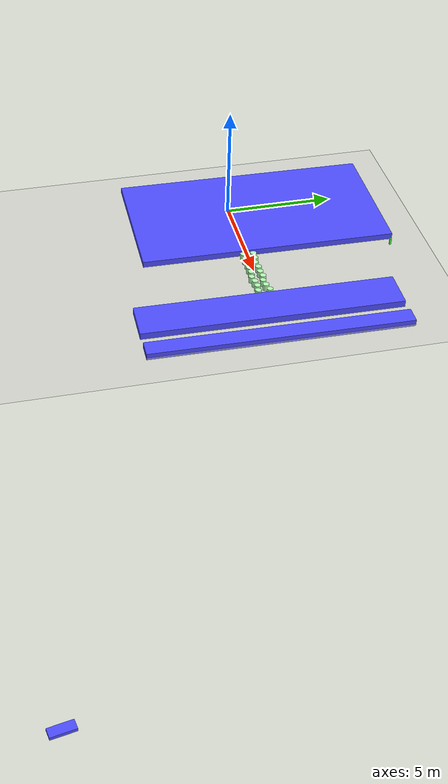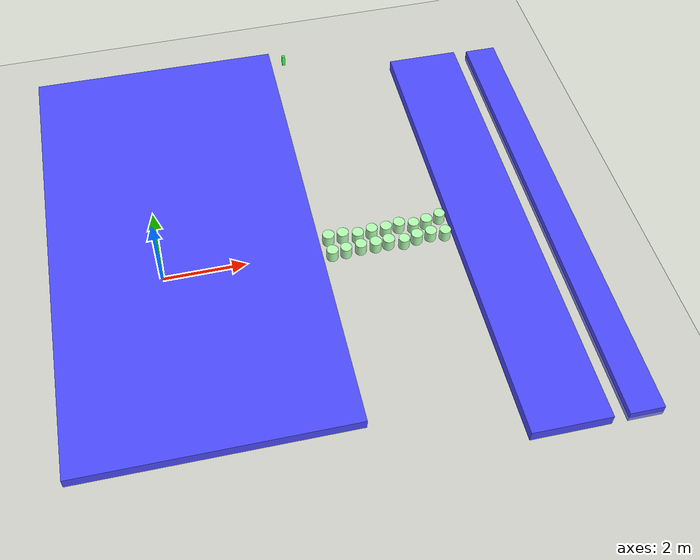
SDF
<sdf version="1.7">
 <world name="default">
  <light name="sun" type="directional">
   <pose>0 0 10 0 -0 0</pose>
   <diffuse>0.8 0.8 0.8 1</diffuse>
   <specular>0.2 0.2 0.2 1</specular>
   <attenuation>
    <range>1000</range>
    <constant>0.9</constant>
    <linear>0.01</linear>
    <quadratic>0.001</quadratic>
   </attenuation>
   <direction>-0.5 0.1 -0.9</direction>
   <spot><inner_angle>0</inner_angle><outer_angle>0</outer_angle><falloff>0</falloff></spot>
  </light>
  <model name="ground_plane">
   <static>1</static>
   <link name="link">
    <collision name="collision">
     <geometry><plane><normal>0 0 1</normal><size>100 100</size></plane></geometry>
     <surface><friction><ode><mu>100</mu><mu2>50</mu2></ode></friction></surface>
    </collision>
    <visual name="visual">
     <cast_shadows>0</cast_shadows>
     <geometry><plane><normal>0 0 1</normal><size>100 100</size></plane></geometry>
     <material>
      <script><uri>file://media/materials/scripts/gazebo.material</uri><name>Gazebo/Grey</name></script>
     </material>
    </visual>
   </link>
  </model>
  <gravity>0 0 -9.8</gravity>
  <magnetic_field>6e-06 2.3e-05 -4.2e-05</magnetic_field>
  <atmosphere type="adiabatic"/>
  <physics type="ode">
   <max_step_size>0.001</max_step_size>
   <real_time_factor>1</real_time_factor>
   <real_time_update_rate>1000</real_time_update_rate>
  </physics>
  <scene><ambient>0.4 0.4 0.4 1</ambient><background>0.7 0.7 0.7 1</background><shadows>1</shadows></scene>
  <spherical_coordinates>
   <surface_model>EARTH_WGS84</surface_model>
   <latitude_deg>0</latitude_deg>
   <longitude_deg>0</longitude_deg>
   <elevation>0</elevation>
   <heading_deg>0</heading_deg>
  </spherical_coordinates>
  <model name="ban_200_80_30_clone_clone">
   <link name="link">
    <inertial>
     <mass>1</mass>
     <inertia>
      <ixx>0.166667</ixx>
      <ixy>0</ixy>
      <ixz>0</ixz>
      <iyy>0.166667</iyy>
      <iyz>0</iyz>
      <izz>0.166667</izz>
     </inertia>
    </inertial>
    <visual name="visual">
     <geometry><box><size>2 0.8 0.3</size></box></geometry>
     <material>
      <script><name>Gazebo/Grey</name><uri>file://media/materials/scripts/gazebo.material</uri></script>
      <shader type="pixel"><normal_map>__default__</normal_map></shader>
      <ambient>0.3 0.3 1 1</ambient>
      <diffuse>0.7 0.7 0.7 1</diffuse>
      <specular>0.01 0.01 0.01 1</specular>
      <emissive>0 0 0 1</emissive>
     </material>
    </visual>
    <collision name="collision">
     <geometry><box><size>2 0.8 0.3</size></box></geometry>
     <surface>
      <friction>
       <ode><mu>1</mu><mu2>1</mu2><fdir1>0 0 0</fdir1><slip1>0</slip1><slip2>0</slip2></ode>
       <torsional>
        <coefficient>1</coefficient>
        <patch_radius>0</patch_radius>
        <surface_radius>0</surface_radius>
        <use_patch_radius>1</use_patch_radius>
        <ode><slip>0</slip></ode>
       </torsional>
      </friction>
      <bounce><restitution_coefficient>0</restitution_coefficient><threshold>1e+06</threshold></bounce>
      <contact>
       <collide_without_contact>0</collide_without_contact>
       <collide_without_contact_bitmask>1</collide_without_contact_bitmask>
       <collide_bitmask>1</collide_bitmask>
       <ode>
        <soft_cfm>0</soft_cfm>
        <soft_erp>0.2</soft_erp>
        <kp>1e+13</kp>
        <kd>1</kd>
        <max_vel>0.01</max_vel>
        <min_depth>0</min_depth>
       </ode>
       <bullet>
        <split_impulse>1</split_impulse>
        <split_impulse_penetration_threshold>-0.01</split_impulse_penetration_threshold>
        <soft_cfm>0</soft_cfm>
        <soft_erp>0.2</soft_erp>
        <kp>1e+13</kp>
        <kd>1</kd>
       </bullet>
      </contact>
     </surface>
    </collision>
   </link>
   <static>1</static>
   <pose>3.32802 -11.2985 -36.3188 0 0 -1.39548</pose>
  </model>
  <model name="ban_400_80_30_clone">
   <link name="link">
    <inertial>
     <mass>1</mass>
     <inertia>
      <ixx>0.166667</ixx>
      <ixy>0</ixy>
      <ixz>0</ixz>
      <iyy>0.166667</iyy>
      <iyz>0</iyz>
      <izz>0.166667</izz>
     </inertia>
    </inertial>
    <visual name="visual">
     <geometry><box><size>11.7457 0.8 0.3</size></box></geometry>
     <material>
      <script><name>Gazebo/Grey</name><uri>file://media/materials/scripts/gazebo.material</uri></script>
      <shader type="pixel"><normal_map>__default__</normal_map></shader>
      <ambient>0.3 0.3 1 1</ambient>
      <diffuse>0.7 0.7 0.7 1</diffuse>
      <specular>0.01 0.01 0.01 1</specular>
      <emissive>0 0 0 1</emissive>
     </material>
    </visual>
    <collision name="collision">
     <geometry><box><size>11.7457 0.8 0.3</size></box></geometry>
     <surface>
      <friction>
       <ode><mu>1</mu><mu2>1</mu2><fdir1>0 0 0</fdir1><slip1>0</slip1><slip2>0</slip2></ode>
       <torsional>
        <coefficient>1</coefficient>
        <patch_radius>0</patch_radius>
        <surface_radius>0</surface_radius>
        <use_patch_radius>1</use_patch_radius>
        <ode><slip>0</slip></ode>
       </torsional>
      </friction>
      <bounce><restitution_coefficient>0</restitution_coefficient><threshold>1e+06</threshold></bounce>
      <contact>
       <collide_without_contact>0</collide_without_contact>
       <collide_without_contact_bitmask>1</collide_without_contact_bitmask>
       <collide_bitmask>1</collide_bitmask>
       <ode>
        <soft_cfm>0</soft_cfm>
        <soft_erp>0.2</soft_erp>
        <kp>1e+13</kp>
        <kd>1</kd>
        <max_vel>0.01</max_vel>
        <min_depth>0</min_depth>
       </ode>
       <bullet>
        <split_impulse>1</split_impulse>
        <split_impulse_penetration_threshold>-0.01</split_impulse_penetration_threshold>
        <soft_cfm>0</soft_cfm>
        <soft_erp>0.2</soft_erp>
        <kp>1e+13</kp>
        <kd>1</kd>
       </bullet>
      </contact>
     </surface>
    </collision>
   </link>
   <static>1</static>
   <pose>9.68721 0.016567 0 0 -0 1.55763</pose>
  </model>
  <model name="mhz_8_30_clone">
   <link name="link">
    <inertial>
     <mass>1</mass>
     <inertia>
      <ixx>0.166667</ixx>
      <ixy>0</ixy>
      <ixz>0</ixz>
      <iyy>0.166667</iyy>
      <iyz>0</iyz>
      <izz>0.166667</izz>
     </inertia>
    </inertial>
    <visual name="visual">
     <geometry><box><size>0.08 0.08 0.3</size></box></geometry>
     <material>
      <script><name>Gazebo/Grey</name><uri>file://media/materials/scripts/gazebo.material</uri></script>
      <shader type="pixel"><normal_map>__default__</normal_map></shader>
      <ambient>0.3 1 0.3 1</ambient>
      <diffuse>0.7 0.7 0.7 1</diffuse>
      <specular>0.01 0.01 0.01 1</specular>
      <emissive>0 0 0 1</emissive>
     </material>
    </visual>
    <collision name="collision">
     <geometry><box><size>0.08 0.08 0.3</size></box></geometry>
     <surface>
      <friction>
       <ode><mu>1</mu><mu2>1</mu2><fdir1>0 0 0</fdir1><slip1>0</slip1><slip2>0</slip2></ode>
       <torsional>
        <coefficient>1</coefficient>
        <patch_radius>0</patch_radius>
        <surface_radius>0</surface_radius>
        <use_patch_radius>1</use_patch_radius>
        <ode><slip>0</slip></ode>
       </torsional>
      </friction>
      <bounce><restitution_coefficient>0</restitution_coefficient><threshold>1e+06</threshold></bounce>
      <contact>
       <collide_without_contact>0</collide_without_contact>
       <collide_without_contact_bitmask>1</collide_without_contact_bitmask>
       <collide_bitmask>1</collide_bitmask>
       <ode>
        <soft_cfm>0</soft_cfm>
        <soft_erp>0.2</soft_erp>
        <kp>1e+13</kp>
        <kd>1</kd>
        <max_vel>0.01</max_vel>
        <min_depth>0</min_depth>
       </ode>
       <bullet>
        <split_impulse>1</split_impulse>
        <split_impulse_penetration_threshold>-0.01</split_impulse_penetration_threshold>
        <soft_cfm>0</soft_cfm>
        <soft_erp>0.2</soft_erp>
        <kp>1e+13</kp>
        <kd>1</kd>
       </bullet>
      </contact>
     </surface>
    </collision>
   </link>
   <static>1</static>
   <pose>4.25594 6.71166 0.134436 0 -0 0</pose>
  </model>
  <model name="ban_400_80_30_clone_clone_clone">
   <link name="link">
    <inertial>
     <mass>1</mass>
     <inertia>
      <ixx>0.166667</ixx>
      <ixy>0</ixy>
      <ixz>0</ixz>
      <iyy>0.166667</iyy>
      <iyz>0</iyz>
      <izz>0.166667</izz>
     </inertia>
    </inertial>
    <visual name="visual">
     <geometry><box><size>11.703 1.83242 0.3</size></box></geometry>
     <material>
      <script><name>Gazebo/Grey</name><uri>file://media/materials/scripts/gazebo.material</uri></script>
      <shader type="pixel"><normal_map>__default__</normal_map></shader>
      <ambient>0.3 0.3 1 1</ambient>
      <diffuse>0.7 0.7 0.7 1</diffuse>
      <specular>0.01 0.01 0.01 1</specular>
      <emissive>0 0 0 1</emissive>
     </material>
    </visual>
    <collision name="collision">
     <geometry><box><size>11.703 1.83242 0.3</size></box></geometry>
     <surface>
      <friction>
       <ode><mu>1</mu><mu2>1</mu2><fdir1>0 0 0</fdir1><slip1>0</slip1><slip2>0</slip2></ode>
       <torsional>
        <coefficient>1</coefficient>
        <patch_radius>0</patch_radius>
        <surface_radius>0</surface_radius>
        <use_patch_radius>1</use_patch_radius>
        <ode><slip>0</slip></ode>
       </torsional>
      </friction>
      <bounce><restitution_coefficient>0</restitution_coefficient><threshold>1e+06</threshold></bounce>
      <contact>
       <collide_without_contact>0</collide_without_contact>
       <collide_without_contact_bitmask>1</collide_without_contact_bitmask>
       <collide_bitmask>1</collide_bitmask>
       <ode>
        <soft_cfm>0</soft_cfm>
        <soft_erp>0.2</soft_erp>
        <kp>1e+13</kp>
        <kd>1</kd>
        <max_vel>0.01</max_vel>
        <min_depth>0</min_depth>
       </ode>
       <bullet>
        <split_impulse>1</split_impulse>
        <split_impulse_penetration_threshold>-0.01</split_impulse_penetration_threshold>
        <soft_cfm>0</soft_cfm>
        <soft_erp>0.2</soft_erp>
        <kp>1e+13</kp>
        <kd>1</kd>
       </bullet>
      </contact>
     </surface>
    </collision>
   </link>
   <static>1</static>
   <pose>7.95579 -0.038744 0.139007 0 -0 1.55763</pose>
  </model>
  <model name="ban_400_80_30_clone_clone_0_clone_clone">
   <link name="link">
    <inertial>
     <mass>1</mass>
     <inertia>
      <ixx>0.166667</ixx>
      <ixy>0</ixy>
      <ixz>0</ixz>
      <iyy>0.166667</iyy>
      <iyz>0</iyz>
      <izz>0.166667</izz>
     </inertia>
    </inertial>
    <visual name="visual">
     <geometry><box><size>11.7457 6.34681 0.274752</size></box></geometry>
     <material>
      <script><name>Gazebo/Grey</name><uri>file://media/materials/scripts/gazebo.material</uri></script>
      <shader type="pixel"><normal_map>__default__</normal_map></shader>
      <ambient>0.3 0.3 1 1</ambient>
      <diffuse>0.7 0.7 0.7 1</diffuse>
      <specular>0.01 0.01 0.01 1</specular>
      <emissive>0 0 0 1</emissive>
     </material>
    </visual>
    <collision name="collision">
     <geometry><box><size>11.7457 6.34681 0.274752</size></box></geometry>
     <surface>
      <friction>
       <ode><mu>1</mu><mu2>1</mu2><fdir1>0 0 0</fdir1><slip1>0</slip1><slip2>0</slip2></ode>
       <torsional>
        <coefficient>1</coefficient>
        <patch_radius>0</patch_radius>
        <surface_radius>0</surface_radius>
        <use_patch_radius>1</use_patch_radius>
        <ode><slip>0</slip></ode>
       </torsional>
      </friction>
      <bounce><restitution_coefficient>0</restitution_coefficient><threshold>1e+06</threshold></bounce>
      <contact>
       <collide_without_contact>0</collide_without_contact>
       <collide_without_contact_bitmask>1</collide_without_contact_bitmask>
       <collide_bitmask>1</collide_bitmask>
       <ode>
        <soft_cfm>0</soft_cfm>
        <soft_erp>0.2</soft_erp>
        <kp>1e+13</kp>
        <kd>1</kd>
        <max_vel>0.01</max_vel>
        <min_depth>0</min_depth>
       </ode>
       <bullet>
        <split_impulse>1</split_impulse>
        <split_impulse_penetration_threshold>-0.01</split_impulse_penetration_threshold>
        <soft_cfm>0</soft_cfm>
        <soft_erp>0.2</soft_erp>
        <kp>1e+13</kp>
        <kd>1</kd>
       </bullet>
      </contact>
     </surface>
    </collision>
   </link>
   <static>1</static>
   <pose>0.623572 1.08547 0.138376 0 -0 1.55763</pose>
  </model>
  <model name="mhz_y_25_30_clone_13_clone_clone_9_clone_0_clone_clone">
   <link name="link">
    <inertial>
     <mass>1</mass>
     <inertia><ixx>0.145833</ixx><ixy>0</ixy><ixz>0</ixz><iyy>0.145833</iyy><iyz>0</iyz><izz>0.125</izz></inertia>
    </inertial>
    <visual name="visual">
     <geometry><cylinder><radius>0.142364</radius><length>0.3</length></cylinder></geometry>
     <material>
      <script><name>Gazebo/Grey</name><uri>file://media/materials/scripts/gazebo.material</uri></script>
      <shader type="pixel"><normal_map>__default__</normal_map></shader>
      <ambient>0 1 0 0</ambient>
      <diffuse>0.7 1 0.7 1</diffuse>
      <specular>0.01 0.01 0.01 1</specular>
      <emissive>0 0 0 1</emissive>
     </material>
    </visual>
    <collision name="collision">
     <geometry><cylinder><radius>0.142364</radius><length>0.3</length></cylinder></geometry>
     <surface>
      <friction>
       <ode><mu>1</mu><mu2>1</mu2><fdir1>0 0 0</fdir1><slip1>0</slip1><slip2>0</slip2></ode>
       <torsional>
        <coefficient>1</coefficient>
        <patch_radius>0</patch_radius>
        <surface_radius>0</surface_radius>
        <use_patch_radius>1</use_patch_radius>
        <ode><slip>0</slip></ode>
       </torsional>
      </friction>
      <bounce><restitution_coefficient>0</restitution_coefficient><threshold>1e+06</threshold></bounce>
      <contact>
       <collide_without_contact>0</collide_without_contact>
       <collide_without_contact_bitmask>1</collide_without_contact_bitmask>
       <collide_bitmask>1</collide_bitmask>
       <ode>
        <soft_cfm>0</soft_cfm>
        <soft_erp>0.2</soft_erp>
        <kp>1e+13</kp>
        <kd>1</kd>
        <max_vel>0.01</max_vel>
        <min_depth>0</min_depth>
       </ode>
       <bullet>
        <split_impulse>1</split_impulse>
        <split_impulse_penetration_threshold>-0.01</split_impulse_penetration_threshold>
        <soft_cfm>0</soft_cfm>
        <soft_erp>0.2</soft_erp>
        <kp>1e+13</kp>
        <kd>1</kd>
       </bullet>
      </contact>
     </surface>
    </collision>
   </link>
   <static>1</static>
   <pose>4.04704 0.216351 0.14679 0 -0 0</pose>
  </model>
  <model name="mhz_y_25_30_clone_13_clone_clone_9_clone_0_clone_clone_0_clone_clone">
   <link name="link">
    <inertial>
     <mass>1</mass>
     <inertia><ixx>0.145833</ixx><ixy>0</ixy><ixz>0</ixz><iyy>0.145833</iyy><iyz>0</iyz><izz>0.125</izz></inertia>
    </inertial>
    <visual name="visual">
     <geometry><cylinder><radius>0.140595</radius><length>0.3</length></cylinder></geometry>
     <material>
      <script><name>Gazebo/Grey</name><uri>file://media/materials/scripts/gazebo.material</uri></script>
      <shader type="pixel"><normal_map>__default__</normal_map></shader>
      <ambient>0 1 0 0</ambient>
      <diffuse>0.7 1 0.7 1</diffuse>
      <specular>0.01 0.01 0.01 1</specular>
      <emissive>0 0 0 1</emissive>
     </material>
    </visual>
    <collision name="collision">
     <geometry><cylinder><radius>0.140595</radius><length>0.3</length></cylinder></geometry>
     <surface>
      <friction>
       <ode><mu>1</mu><mu2>1</mu2><fdir1>0 0 0</fdir1><slip1>0</slip1><slip2>0</slip2></ode>
       <torsional>
        <coefficient>1</coefficient>
        <patch_radius>0</patch_radius>
        <surface_radius>0</surface_radius>
        <use_patch_radius>1</use_patch_radius>
        <ode><slip>0</slip></ode>
       </torsional>
      </friction>
      <bounce><restitution_coefficient>0</restitution_coefficient><threshold>1e+06</threshold></bounce>
      <contact>
       <collide_without_contact>0</collide_without_contact>
       <collide_without_contact_bitmask>1</collide_without_contact_bitmask>
       <collide_bitmask>1</collide_bitmask>
       <ode>
        <soft_cfm>0</soft_cfm>
        <soft_erp>0.2</soft_erp>
        <kp>1e+13</kp>
        <kd>1</kd>
        <max_vel>0.01</max_vel>
        <min_depth>0</min_depth>
       </ode>
       <bullet>
        <split_impulse>1</split_impulse>
        <split_impulse_penetration_threshold>-0.01</split_impulse_penetration_threshold>
        <soft_cfm>0</soft_cfm>
        <soft_erp>0.2</soft_erp>
        <kp>1e+13</kp>
        <kd>1</kd>
       </bullet>
      </contact>
     </surface>
    </collision>
   </link>
   <static>1</static>
   <pose>4.75615 0.130568 0.14679 0 -0 0</pose>
  </model>
  <model name="mhz_y_25_30_clone_13_clone_clone_9_clone_0_clone_clone_clone">
   <link name="link">
    <inertial>
     <mass>1</mass>
     <inertia><ixx>0.145833</ixx><ixy>0</ixy><ixz>0</ixz><iyy>0.145833</iyy><iyz>0</iyz><izz>0.125</izz></inertia>
    </inertial>
    <visual name="visual">
     <geometry><cylinder><radius>0.139852</radius><length>0.3</length></cylinder></geometry>
     <material>
      <script><name>Gazebo/Grey</name><uri>file://media/materials/scripts/gazebo.material</uri></script>
      <shader type="pixel"><normal_map>__default__</normal_map></shader>
      <ambient>0 1 0 0</ambient>
      <diffuse>0.7 1 0.7 1</diffuse>
      <specular>0.01 0.01 0.01 1</specular>
      <emissive>0 0 0 1</emissive>
     </material>
    </visual>
    <collision name="collision">
     <geometry><cylinder><radius>0.139852</radius><length>0.3</length></cylinder></geometry>
     <surface>
      <friction>
       <ode><mu>1</mu><mu2>1</mu2><fdir1>0 0 0</fdir1><slip1>0</slip1><slip2>0</slip2></ode>
       <torsional>
        <coefficient>1</coefficient>
        <patch_radius>0</patch_radius>
        <surface_radius>0</surface_radius>
        <use_patch_radius>1</use_patch_radius>
        <ode><slip>0</slip></ode>
       </torsional>
      </friction>
      <bounce><restitution_coefficient>0</restitution_coefficient><threshold>1e+06</threshold></bounce>
      <contact>
       <collide_without_contact>0</collide_without_contact>
       <collide_without_contact_bitmask>1</collide_without_contact_bitmask>
       <collide_bitmask>1</collide_bitmask>
       <ode>
        <soft_cfm>0</soft_cfm>
        <soft_erp>0.2</soft_erp>
        <kp>1e+13</kp>
        <kd>1</kd>
        <max_vel>0.01</max_vel>
        <min_depth>0</min_depth>
       </ode>
       <bullet>
        <split_impulse>1</split_impulse>
        <split_impulse_penetration_threshold>-0.01</split_impulse_penetration_threshold>
        <soft_cfm>0</soft_cfm>
        <soft_erp>0.2</soft_erp>
        <kp>1e+13</kp>
        <kd>1</kd>
       </bullet>
      </contact>
     </surface>
    </collision>
   </link>
   <static>1</static>
   <pose>4.04009 -0.254017 0.14679 0 -0 0</pose>
  </model>
  <model name="mhz_y_25_30_clone_13_clone_clone_9_clone_0_clone_clone_clone_clone">
   <link name="link">
    <inertial>
     <mass>1</mass>
     <inertia><ixx>0.145833</ixx><ixy>0</ixy><ixz>0</ixz><iyy>0.145833</iyy><iyz>0</iyz><izz>0.125</izz></inertia>
    </inertial>
    <visual name="visual">
     <geometry><cylinder><radius>0.140065</radius><length>0.3</length></cylinder></geometry>
     <material>
      <script><name>Gazebo/Grey</name><uri>file://media/materials/scripts/gazebo.material</uri></script>
      <shader type="pixel"><normal_map>__default__</normal_map></shader>
      <ambient>0 1 0 0</ambient>
      <diffuse>0.7 1 0.7 1</diffuse>
      <specular>0.01 0.01 0.01 1</specular>
      <emissive>0 0 0 1</emissive>
     </material>
    </visual>
    <collision name="collision">
     <geometry><cylinder><radius>0.140065</radius><length>0.3</length></cylinder></geometry>
     <surface>
      <friction>
       <ode><mu>1</mu><mu2>1</mu2><fdir1>0 0 0</fdir1><slip1>0</slip1><slip2>0</slip2></ode>
       <torsional>
        <coefficient>1</coefficient>
        <patch_radius>0</patch_radius>
        <surface_radius>0</surface_radius>
        <use_patch_radius>1</use_patch_radius>
        <ode><slip>0</slip></ode>
       </torsional>
      </friction>
      <bounce><restitution_coefficient>0</restitution_coefficient><threshold>1e+06</threshold></bounce>
      <contact>
       <collide_without_contact>0</collide_without_contact>
       <collide_without_contact_bitmask>1</collide_without_contact_bitmask>
       <collide_bitmask>1</collide_bitmask>
       <ode>
        <soft_cfm>0</soft_cfm>
        <soft_erp>0.2</soft_erp>
        <kp>1e+13</kp>
        <kd>1</kd>
        <max_vel>0.01</max_vel>
        <min_depth>0</min_depth>
       </ode>
       <bullet>
        <split_impulse>1</split_impulse>
        <split_impulse_penetration_threshold>-0.01</split_impulse_penetration_threshold>
        <soft_cfm>0</soft_cfm>
        <soft_erp>0.2</soft_erp>
        <kp>1e+13</kp>
        <kd>1</kd>
       </bullet>
      </contact>
     </surface>
    </collision>
   </link>
   <static>1</static>
   <pose>4.39946 0.208475 0.14679 0 -0 0</pose>
  </model>
  <model name="mhz_y_25_30_clone_13_clone_clone_9_clone_0_clone_clone_clone_0">
   <link name="link">
    <inertial>
     <mass>1</mass>
     <inertia><ixx>0.145833</ixx><ixy>0</ixy><ixz>0</ixz><iyy>0.145833</iyy><iyz>0</iyz><izz>0.125</izz></inertia>
    </inertial>
    <visual name="visual">
     <geometry><cylinder><radius>0.135622</radius><length>0.3</length></cylinder></geometry>
     <material>
      <script><name>Gazebo/Grey</name><uri>file://media/materials/scripts/gazebo.material</uri></script>
      <shader type="pixel"><normal_map>__default__</normal_map></shader>
      <ambient>0 1 0 0</ambient>
      <diffuse>0.7 1 0.7 1</diffuse>
      <specular>0.01 0.01 0.01 1</specular>
      <emissive>0 0 0 1</emissive>
     </material>
    </visual>
    <collision name="collision">
     <geometry><cylinder><radius>0.135622</radius><length>0.3</length></cylinder></geometry>
     <surface>
      <friction>
       <ode><mu>1</mu><mu2>1</mu2><fdir1>0 0 0</fdir1><slip1>0</slip1><slip2>0</slip2></ode>
       <torsional>
        <coefficient>1</coefficient>
        <patch_radius>0</patch_radius>
        <surface_radius>0</surface_radius>
        <use_patch_radius>1</use_patch_radius>
        <ode><slip>0</slip></ode>
       </torsional>
      </friction>
      <bounce><restitution_coefficient>0</restitution_coefficient><threshold>1e+06</threshold></bounce>
      <contact>
       <collide_without_contact>0</collide_without_contact>
       <collide_without_contact_bitmask>1</collide_without_contact_bitmask>
       <collide_bitmask>1</collide_bitmask>
       <ode>
        <soft_cfm>0</soft_cfm>
        <soft_erp>0.2</soft_erp>
        <kp>1e+13</kp>
        <kd>1</kd>
        <max_vel>0.01</max_vel>
        <min_depth>0</min_depth>
       </ode>
       <bullet>
        <split_impulse>1</split_impulse>
        <split_impulse_penetration_threshold>-0.01</split_impulse_penetration_threshold>
        <soft_cfm>0</soft_cfm>
        <soft_erp>0.2</soft_erp>
        <kp>1e+13</kp>
        <kd>1</kd>
       </bullet>
      </contact>
     </surface>
    </collision>
   </link>
   <static>1</static>
   <pose>4.37736 -0.24832 0.14679 0 -0 0</pose>
  </model>
  <model name="mhz_y_25_30_clone_13_clone_clone_9_clone_0_clone_clone_clone_1">
   <link name="link">
    <inertial>
     <mass>1</mass>
     <inertia><ixx>0.145833</ixx><ixy>0</ixy><ixz>0</ixz><iyy>0.145833</iyy><iyz>0</iyz><izz>0.125</izz></inertia>
    </inertial>
    <visual name="visual">
     <geometry><cylinder><radius>0.13741</radius><length>0.3</length></cylinder></geometry>
     <material>
      <script><name>Gazebo/Grey</name><uri>file://media/materials/scripts/gazebo.material</uri></script>
      <shader type="pixel"><normal_map>__default__</normal_map></shader>
      <ambient>0 1 0 0</ambient>
      <diffuse>0.7 1 0.7 1</diffuse>
      <specular>0.01 0.01 0.01 1</specular>
      <emissive>0 0 0 1</emissive>
     </material>
    </visual>
    <collision name="collision">
     <geometry><cylinder><radius>0.13741</radius><length>0.3</length></cylinder></geometry>
     <surface>
      <friction>
       <ode><mu>1</mu><mu2>1</mu2><fdir1>0 0 0</fdir1><slip1>0</slip1><slip2>0</slip2></ode>
       <torsional>
        <coefficient>1</coefficient>
        <patch_radius>0</patch_radius>
        <surface_radius>0</surface_radius>
        <use_patch_radius>1</use_patch_radius>
        <ode><slip>0</slip></ode>
       </torsional>
      </friction>
      <bounce><restitution_coefficient>0</restitution_coefficient><threshold>1e+06</threshold></bounce>
      <contact>
       <collide_without_contact>0</collide_without_contact>
       <collide_without_contact_bitmask>1</collide_without_contact_bitmask>
       <collide_bitmask>1</collide_bitmask>
       <ode>
        <soft_cfm>0</soft_cfm>
        <soft_erp>0.2</soft_erp>
        <kp>1e+13</kp>
        <kd>1</kd>
        <max_vel>0.01</max_vel>
        <min_depth>0</min_depth>
       </ode>
       <bullet>
        <split_impulse>1</split_impulse>
        <split_impulse_penetration_threshold>-0.01</split_impulse_penetration_threshold>
        <soft_cfm>0</soft_cfm>
        <soft_erp>0.2</soft_erp>
        <kp>1e+13</kp>
        <kd>1</kd>
       </bullet>
      </contact>
     </surface>
    </collision>
   </link>
   <static>1</static>
   <pose>4.74503 -0.223607 0.14679 0 -0 0</pose>
  </model>
  <model name="mhz_y_25_30_clone_13_clone_clone_9_clone_0_clone_clone_clone_2">
   <link name="link">
    <inertial>
     <mass>1</mass>
     <inertia><ixx>0.145833</ixx><ixy>0</ixy><ixz>0</ixz><iyy>0.145833</iyy><iyz>0</iyz><izz>0.125</izz></inertia>
    </inertial>
    <visual name="visual">
     <geometry><cylinder><radius>0.142685</radius><length>0.3</length></cylinder></geometry>
     <material>
      <script><name>Gazebo/Grey</name><uri>file://media/materials/scripts/gazebo.material</uri></script>
      <shader type="pixel"><normal_map>__default__</normal_map></shader>
      <ambient>0 1 0 0</ambient>
      <diffuse>0.7 1 0.7 1</diffuse>
      <specular>0.01 0.01 0.01 1</specular>
      <emissive>0 0 0 1</emissive>
     </material>
    </visual>
    <collision name="collision">
     <geometry><cylinder><radius>0.142685</radius><length>0.3</length></cylinder></geometry>
     <surface>
      <friction>
       <ode><mu>1</mu><mu2>1</mu2><fdir1>0 0 0</fdir1><slip1>0</slip1><slip2>0</slip2></ode>
       <torsional>
        <coefficient>1</coefficient>
        <patch_radius>0</patch_radius>
        <surface_radius>0</surface_radius>
        <use_patch_radius>1</use_patch_radius>
        <ode><slip>0</slip></ode>
       </torsional>
      </friction>
      <bounce><restitution_coefficient>0</restitution_coefficient><threshold>1e+06</threshold></bounce>
      <contact>
       <collide_without_contact>0</collide_without_contact>
       <collide_without_contact_bitmask>1</collide_without_contact_bitmask>
       <collide_bitmask>1</collide_bitmask>
       <ode>
        <soft_cfm>0</soft_cfm>
        <soft_erp>0.2</soft_erp>
        <kp>1e+13</kp>
        <kd>1</kd>
        <max_vel>0.01</max_vel>
        <min_depth>0</min_depth>
       </ode>
       <bullet>
        <split_impulse>1</split_impulse>
        <split_impulse_penetration_threshold>-0.01</split_impulse_penetration_threshold>
        <soft_cfm>0</soft_cfm>
        <soft_erp>0.2</soft_erp>
        <kp>1e+13</kp>
        <kd>1</kd>
       </bullet>
      </contact>
     </surface>
    </collision>
   </link>
   <static>1</static>
   <pose>5.10844 -0.234961 0.14679 0 -0 0</pose>
  </model>
  <model name="mhz_y_25_30_clone_13_clone_clone_9_clone_0_clone_clone_clone_2_clone">
   <link name="link">
    <inertial>
     <mass>1</mass>
     <inertia><ixx>0.145833</ixx><ixy>0</ixy><ixz>0</ixz><iyy>0.145833</iyy><iyz>0</iyz><izz>0.125</izz></inertia>
    </inertial>
    <visual name="visual">
     <geometry><cylinder><radius>0.138034</radius><length>0.3</length></cylinder></geometry>
     <material>
      <script><name>Gazebo/Grey</name><uri>file://media/materials/scripts/gazebo.material</uri></script>
      <shader type="pixel"><normal_map>__default__</normal_map></shader>
      <ambient>0 1 0 0</ambient>
      <diffuse>0.7 1 0.7 1</diffuse>
      <specular>0.01 0.01 0.01 1</specular>
      <emissive>0 0 0 1</emissive>
     </material>
    </visual>
    <collision name="collision">
     <geometry><cylinder><radius>0.138034</radius><length>0.3</length></cylinder></geometry>
     <surface>
      <friction>
       <ode><mu>1</mu><mu2>1</mu2><fdir1>0 0 0</fdir1><slip1>0</slip1><slip2>0</slip2></ode>
       <torsional>
        <coefficient>1</coefficient>
        <patch_radius>0</patch_radius>
        <surface_radius>0</surface_radius>
        <use_patch_radius>1</use_patch_radius>
        <ode><slip>0</slip></ode>
       </torsional>
      </friction>
      <bounce><restitution_coefficient>0</restitution_coefficient><threshold>1e+06</threshold></bounce>
      <contact>
       <collide_without_contact>0</collide_without_contact>
       <collide_without_contact_bitmask>1</collide_without_contact_bitmask>
       <collide_bitmask>1</collide_bitmask>
       <ode>
        <soft_cfm>0</soft_cfm>
        <soft_erp>0.2</soft_erp>
        <kp>1e+13</kp>
        <kd>1</kd>
        <max_vel>0.01</max_vel>
        <min_depth>0</min_depth>
       </ode>
       <bullet>
        <split_impulse>1</split_impulse>
        <split_impulse_penetration_threshold>-0.01</split_impulse_penetration_threshold>
        <soft_cfm>0</soft_cfm>
        <soft_erp>0.2</soft_erp>
        <kp>1e+13</kp>
        <kd>1</kd>
       </bullet>
      </contact>
     </surface>
    </collision>
   </link>
   <static>1</static>
   <pose>5.11304 0.183914 0.14679 0 -0 0</pose>
  </model>
  <model name="mhz_y_25_30_clone_13_clone_clone_9_clone_0_clone_clone_clone_2_clone_0">
   <link name="link">
    <inertial>
     <mass>1</mass>
     <inertia><ixx>0.145833</ixx><ixy>0</ixy><ixz>0</ixz><iyy>0.145833</iyy><iyz>0</iyz><izz>0.125</izz></inertia>
    </inertial>
    <visual name="visual">
     <geometry><cylinder><radius>0.142536</radius><length>0.3</length></cylinder></geometry>
     <material>
      <script><name>Gazebo/Grey</name><uri>file://media/materials/scripts/gazebo.material</uri></script>
      <shader type="pixel"><normal_map>__default__</normal_map></shader>
      <ambient>0 1 0 0</ambient>
      <diffuse>0.7 1 0.7 1</diffuse>
      <specular>0.01 0.01 0.01 1</specular>
      <emissive>0 0 0 1</emissive>
     </material>
    </visual>
    <collision name="collision">
     <geometry><cylinder><radius>0.142536</radius><length>0.3</length></cylinder></geometry>
     <surface>
      <friction>
       <ode><mu>1</mu><mu2>1</mu2><fdir1>0 0 0</fdir1><slip1>0</slip1><slip2>0</slip2></ode>
       <torsional>
        <coefficient>1</coefficient>
        <patch_radius>0</patch_radius>
        <surface_radius>0</surface_radius>
        <use_patch_radius>1</use_patch_radius>
        <ode><slip>0</slip></ode>
       </torsional>
      </friction>
      <bounce><restitution_coefficient>0</restitution_coefficient><threshold>1e+06</threshold></bounce>
      <contact>
       <collide_without_contact>0</collide_without_contact>
       <collide_without_contact_bitmask>1</collide_without_contact_bitmask>
       <collide_bitmask>1</collide_bitmask>
       <ode>
        <soft_cfm>0</soft_cfm>
        <soft_erp>0.2</soft_erp>
        <kp>1e+13</kp>
        <kd>1</kd>
        <max_vel>0.01</max_vel>
        <min_depth>0</min_depth>
       </ode>
       <bullet>
        <split_impulse>1</split_impulse>
        <split_impulse_penetration_threshold>-0.01</split_impulse_penetration_threshold>
        <soft_cfm>0</soft_cfm>
        <soft_erp>0.2</soft_erp>
        <kp>1e+13</kp>
        <kd>1</kd>
       </bullet>
      </contact>
     </surface>
    </collision>
   </link>
   <static>1</static>
   <pose>5.43063 -0.224715 0.14679 0 -0 0</pose>
  </model>
  <model name="mhz_y_25_30_clone_13_clone_clone_9_clone_0_clone_clone_clone_2_clone_1">
   <link name="link">
    <inertial>
     <mass>1</mass>
     <inertia><ixx>0.145833</ixx><ixy>0</ixy><ixz>0</ixz><iyy>0.145833</iyy><iyz>0</iyz><izz>0.125</izz></inertia>
    </inertial>
    <visual name="visual">
     <geometry><cylinder><radius>0.138318</radius><length>0.3</length></cylinder></geometry>
     <material>
      <script><name>Gazebo/Grey</name><uri>file://media/materials/scripts/gazebo.material</uri></script>
      <shader type="pixel"><normal_map>__default__</normal_map></shader>
      <ambient>0 1 0 0</ambient>
      <diffuse>0.7 1 0.7 1</diffuse>
      <specular>0.01 0.01 0.01 1</specular>
      <emissive>0 0 0 1</emissive>
     </material>
    </visual>
    <collision name="collision">
     <geometry><cylinder><radius>0.138318</radius><length>0.3</length></cylinder></geometry>
     <surface>
      <friction>
       <ode><mu>1</mu><mu2>1</mu2><fdir1>0 0 0</fdir1><slip1>0</slip1><slip2>0</slip2></ode>
       <torsional>
        <coefficient>1</coefficient>
        <patch_radius>0</patch_radius>
        <surface_radius>0</surface_radius>
        <use_patch_radius>1</use_patch_radius>
        <ode><slip>0</slip></ode>
       </torsional>
      </friction>
      <bounce><restitution_coefficient>0</restitution_coefficient><threshold>1e+06</threshold></bounce>
      <contact>
       <collide_without_contact>0</collide_without_contact>
       <collide_without_contact_bitmask>1</collide_without_contact_bitmask>
       <collide_bitmask>1</collide_bitmask>
       <ode>
        <soft_cfm>0</soft_cfm>
        <soft_erp>0.2</soft_erp>
        <kp>1e+13</kp>
        <kd>1</kd>
        <max_vel>0.01</max_vel>
        <min_depth>0</min_depth>
       </ode>
       <bullet>
        <split_impulse>1</split_impulse>
        <split_impulse_penetration_threshold>-0.01</split_impulse_penetration_threshold>
        <soft_cfm>0</soft_cfm>
        <soft_erp>0.2</soft_erp>
        <kp>1e+13</kp>
        <kd>1</kd>
       </bullet>
      </contact>
     </surface>
    </collision>
   </link>
   <static>1</static>
   <pose>5.46687 0.172524 0.14679 0 -0 0</pose>
  </model>
  <model name="mhz_y_25_30_clone_13_clone_clone_9_clone_0_clone_clone_clone_2_clone_0_clone">
   <link name="link">
    <inertial>
     <mass>1</mass>
     <inertia><ixx>0.145833</ixx><ixy>0</ixy><ixz>0</ixz><iyy>0.145833</iyy><iyz>0</iyz><izz>0.125</izz></inertia>
    </inertial>
    <visual name="visual">
     <geometry><cylinder><radius>0.133418</radius><length>0.3</length></cylinder></geometry>
     <material>
      <script><name>Gazebo/Grey</name><uri>file://media/materials/scripts/gazebo.material</uri></script>
      <shader type="pixel"><normal_map>__default__</normal_map></shader>
      <ambient>0 1 0 0</ambient>
      <diffuse>0.7 1 0.7 1</diffuse>
      <specular>0.01 0.01 0.01 1</specular>
      <emissive>0 0 0 1</emissive>
     </material>
    </visual>
    <collision name="collision">
     <geometry><cylinder><radius>0.133418</radius><length>0.3</length></cylinder></geometry>
     <surface>
      <friction>
       <ode><mu>1</mu><mu2>1</mu2><fdir1>0 0 0</fdir1><slip1>0</slip1><slip2>0</slip2></ode>
       <torsional>
        <coefficient>1</coefficient>
        <patch_radius>0</patch_radius>
        <surface_radius>0</surface_radius>
        <use_patch_radius>1</use_patch_radius>
        <ode><slip>0</slip></ode>
       </torsional>
      </friction>
      <bounce><restitution_coefficient>0</restitution_coefficient><threshold>1e+06</threshold></bounce>
      <contact>
       <collide_without_contact>0</collide_without_contact>
       <collide_without_contact_bitmask>1</collide_without_contact_bitmask>
       <collide_bitmask>1</collide_bitmask>
       <ode>
        <soft_cfm>0</soft_cfm>
        <soft_erp>0.2</soft_erp>
        <kp>1e+13</kp>
        <kd>1</kd>
        <max_vel>0.01</max_vel>
        <min_depth>0</min_depth>
       </ode>
       <bullet>
        <split_impulse>1</split_impulse>
        <split_impulse_penetration_threshold>-0.01</split_impulse_penetration_threshold>
        <soft_cfm>0</soft_cfm>
        <soft_erp>0.2</soft_erp>
        <kp>1e+13</kp>
        <kd>1</kd>
       </bullet>
      </contact>
     </surface>
    </collision>
   </link>
   <static>1</static>
   <pose>5.79619 -0.298056 0.14679 0 -0 0</pose>
  </model>
  <model name="mhz_y_25_30_clone_13_clone_clone_9_clone_0_clone_clone_clone_2_clone_0_clone_clone">
   <link name="link">
    <inertial>
     <mass>1</mass>
     <inertia><ixx>0.145833</ixx><ixy>0</ixy><ixz>0</ixz><iyy>0.145833</iyy><iyz>0</iyz><izz>0.125</izz></inertia>
    </inertial>
    <visual name="visual">
     <geometry><cylinder><radius>0.141644</radius><length>0.3</length></cylinder></geometry>
     <material>
      <script><name>Gazebo/Grey</name><uri>file://media/materials/scripts/gazebo.material</uri></script>
      <shader type="pixel"><normal_map>__default__</normal_map></shader>
      <ambient>0 1 0 0</ambient>
      <diffuse>0.7 1 0.7 1</diffuse>
      <specular>0.01 0.01 0.01 1</specular>
      <emissive>0 0 0 1</emissive>
     </material>
    </visual>
    <collision name="collision">
     <geometry><cylinder><radius>0.141644</radius><length>0.3</length></cylinder></geometry>
     <surface>
      <friction>
       <ode><mu>1</mu><mu2>1</mu2><fdir1>0 0 0</fdir1><slip1>0</slip1><slip2>0</slip2></ode>
       <torsional>
        <coefficient>1</coefficient>
        <patch_radius>0</patch_radius>
        <surface_radius>0</surface_radius>
        <use_patch_radius>1</use_patch_radius>
        <ode><slip>0</slip></ode>
       </torsional>
      </friction>
      <bounce><restitution_coefficient>0</restitution_coefficient><threshold>1e+06</threshold></bounce>
      <contact>
       <collide_without_contact>0</collide_without_contact>
       <collide_without_contact_bitmask>1</collide_without_contact_bitmask>
       <collide_bitmask>1</collide_bitmask>
       <ode>
        <soft_cfm>0</soft_cfm>
        <soft_erp>0.2</soft_erp>
        <kp>1e+13</kp>
        <kd>1</kd>
        <max_vel>0.01</max_vel>
        <min_depth>0</min_depth>
       </ode>
       <bullet>
        <split_impulse>1</split_impulse>
        <split_impulse_penetration_threshold>-0.01</split_impulse_penetration_threshold>
        <soft_cfm>0</soft_cfm>
        <soft_erp>0.2</soft_erp>
        <kp>1e+13</kp>
        <kd>1</kd>
       </bullet>
      </contact>
     </surface>
    </collision>
   </link>
   <static>1</static>
   <pose>5.80467 0.218441 0.14679 0 -0 0</pose>
  </model>
  <model name="mhz_y_25_30_clone_13_clone_clone_9_clone_0_clone_clone_clone_2_clone_0_clone_clone_clone">
   <link name="link">
    <inertial>
     <mass>1</mass>
     <inertia><ixx>0.145833</ixx><ixy>0</ixy><ixz>0</ixz><iyy>0.145833</iyy><iyz>0</iyz><izz>0.125</izz></inertia>
    </inertial>
    <visual name="visual">
     <geometry><cylinder><radius>0.134401</radius><length>0.3</length></cylinder></geometry>
     <material>
      <script><name>Gazebo/Grey</name><uri>file://media/materials/scripts/gazebo.material</uri></script>
      <shader type="pixel"><normal_map>__default__</normal_map></shader>
      <ambient>0 1 0 0</ambient>
      <diffuse>0.7 1 0.7 1</diffuse>
      <specular>0.01 0.01 0.01 1</specular>
      <emissive>0 0 0 1</emissive>
     </material>
    </visual>
    <collision name="collision">
     <geometry><cylinder><radius>0.134401</radius><length>0.3</length></cylinder></geometry>
     <surface>
      <friction>
       <ode><mu>1</mu><mu2>1</mu2><fdir1>0 0 0</fdir1><slip1>0</slip1><slip2>0</slip2></ode>
       <torsional>
        <coefficient>1</coefficient>
        <patch_radius>0</patch_radius>
        <surface_radius>0</surface_radius>
        <use_patch_radius>1</use_patch_radius>
        <ode><slip>0</slip></ode>
       </torsional>
      </friction>
      <bounce><restitution_coefficient>0</restitution_coefficient><threshold>1e+06</threshold></bounce>
      <contact>
       <collide_without_contact>0</collide_without_contact>
       <collide_without_contact_bitmask>1</collide_without_contact_bitmask>
       <collide_bitmask>1</collide_bitmask>
       <ode>
        <soft_cfm>0</soft_cfm>
        <soft_erp>0.2</soft_erp>
        <kp>1e+13</kp>
        <kd>1</kd>
        <max_vel>0.01</max_vel>
        <min_depth>0</min_depth>
       </ode>
       <bullet>
        <split_impulse>1</split_impulse>
        <split_impulse_penetration_threshold>-0.01</split_impulse_penetration_threshold>
        <soft_cfm>0</soft_cfm>
        <soft_erp>0.2</soft_erp>
        <kp>1e+13</kp>
        <kd>1</kd>
       </bullet>
      </contact>
     </surface>
    </collision>
   </link>
   <static>1</static>
   <pose>6.14682 0.13243 0.14679 0 -0 0</pose>
  </model>
  <model name="mhz_y_25_30_clone_13_clone_clone_9_clone_0_clone_clone_clone_2_clone_0_clone_clone_clone_0">
   <link name="link">
    <inertial>
     <mass>1</mass>
     <inertia><ixx>0.145833</ixx><ixy>0</ixy><ixz>0</ixz><iyy>0.145833</iyy><iyz>0</iyz><izz>0.125</izz></inertia>
    </inertial>
    <visual name="visual">
     <geometry><cylinder><radius>0.141109</radius><length>0.3</length></cylinder></geometry>
     <material>
      <script><name>Gazebo/Grey</name><uri>file://media/materials/scripts/gazebo.material</uri></script>
      <shader type="pixel"><normal_map>__default__</normal_map></shader>
      <ambient>0 1 0 0</ambient>
      <diffuse>0.7 1 0.7 1</diffuse>
      <specular>0.01 0.01 0.01 1</specular>
      <emissive>0 0 0 1</emissive>
     </material>
    </visual>
    <collision name="collision">
     <geometry><cylinder><radius>0.141109</radius><length>0.3</length></cylinder></geometry>
     <surface>
      <friction>
       <ode><mu>1</mu><mu2>1</mu2><fdir1>0 0 0</fdir1><slip1>0</slip1><slip2>0</slip2></ode>
       <torsional>
        <coefficient>1</coefficient>
        <patch_radius>0</patch_radius>
        <surface_radius>0</surface_radius>
        <use_patch_radius>1</use_patch_radius>
        <ode><slip>0</slip></ode>
       </torsional>
      </friction>
      <bounce><restitution_coefficient>0</restitution_coefficient><threshold>1e+06</threshold></bounce>
      <contact>
       <collide_without_contact>0</collide_without_contact>
       <collide_without_contact_bitmask>1</collide_without_contact_bitmask>
       <collide_bitmask>1</collide_bitmask>
       <ode>
        <soft_cfm>0</soft_cfm>
        <soft_erp>0.2</soft_erp>
        <kp>1e+13</kp>
        <kd>1</kd>
        <max_vel>0.01</max_vel>
        <min_depth>0</min_depth>
       </ode>
       <bullet>
        <split_impulse>1</split_impulse>
        <split_impulse_penetration_threshold>-0.01</split_impulse_penetration_threshold>
        <soft_cfm>0</soft_cfm>
        <soft_erp>0.2</soft_erp>
        <kp>1e+13</kp>
        <kd>1</kd>
       </bullet>
      </contact>
     </surface>
    </collision>
   </link>
   <static>1</static>
   <pose>6.13296 -0.230629 0.14679 0 -0 0</pose>
  </model>
  <model name="mhz_y_25_30_clone_13_clone_clone_9_clone_0_clone_clone_clone_2_clone_0_clone_clone_clone_2">
   <link name="link">
    <inertial>
     <mass>1</mass>
     <inertia><ixx>0.145833</ixx><ixy>0</ixy><ixz>0</ixz><iyy>0.145833</iyy><iyz>0</iyz><izz>0.125</izz></inertia>
    </inertial>
    <visual name="visual">
     <geometry><cylinder><radius>0.137579</radius><length>0.3</length></cylinder></geometry>
     <material>
      <script><name>Gazebo/Grey</name><uri>file://media/materials/scripts/gazebo.material</uri></script>
      <shader type="pixel"><normal_map>__default__</normal_map></shader>
      <ambient>0 1 0 0</ambient>
      <diffuse>0.7 1 0.7 1</diffuse>
      <specular>0.01 0.01 0.01 1</specular>
      <emissive>0 0 0 1</emissive>
     </material>
    </visual>
    <collision name="collision">
     <geometry><cylinder><radius>0.137579</radius><length>0.3</length></cylinder></geometry>
     <surface>
      <friction>
       <ode><mu>1</mu><mu2>1</mu2><fdir1>0 0 0</fdir1><slip1>0</slip1><slip2>0</slip2></ode>
       <torsional>
        <coefficient>1</coefficient>
        <patch_radius>0</patch_radius>
        <surface_radius>0</surface_radius>
        <use_patch_radius>1</use_patch_radius>
        <ode><slip>0</slip></ode>
       </torsional>
      </friction>
      <bounce><restitution_coefficient>0</restitution_coefficient><threshold>1e+06</threshold></bounce>
      <contact>
       <collide_without_contact>0</collide_without_contact>
       <collide_without_contact_bitmask>1</collide_without_contact_bitmask>
       <collide_bitmask>1</collide_bitmask>
       <ode>
        <soft_cfm>0</soft_cfm>
        <soft_erp>0.2</soft_erp>
        <kp>1e+13</kp>
        <kd>1</kd>
        <max_vel>0.01</max_vel>
        <min_depth>0</min_depth>
       </ode>
       <bullet>
        <split_impulse>1</split_impulse>
        <split_impulse_penetration_threshold>-0.01</split_impulse_penetration_threshold>
        <soft_cfm>0</soft_cfm>
        <soft_erp>0.2</soft_erp>
        <kp>1e+13</kp>
        <kd>1</kd>
       </bullet>
      </contact>
     </surface>
    </collision>
   </link>
   <static>1</static>
   <pose>6.48316 -0.209492 0.14679 0 -0 0</pose>
  </model>
  <model name="mhz_y_25_30_clone_13_clone_clone_9_clone_0_clone_clone_clone_2_clone_0_clone_clone_clone_2_clone">
   <link name="link">
    <inertial>
     <mass>1</mass>
     <inertia><ixx>0.145833</ixx><ixy>0</ixy><ixz>0</ixz><iyy>0.145833</iyy><iyz>0</iyz><izz>0.125</izz></inertia>
    </inertial>
    <visual name="visual">
     <geometry><cylinder><radius>0.13938</radius><length>0.3</length></cylinder></geometry>
     <material>
      <script><name>Gazebo/Grey</name><uri>file://media/materials/scripts/gazebo.material</uri></script>
      <shader type="pixel"><normal_map>__default__</normal_map></shader>
      <ambient>0 1 0 0</ambient>
      <diffuse>0.7 1 0.7 1</diffuse>
      <specular>0.01 0.01 0.01 1</specular>
      <emissive>0 0 0 1</emissive>
     </material>
    </visual>
    <collision name="collision">
     <geometry><cylinder><radius>0.13938</radius><length>0.3</length></cylinder></geometry>
     <surface>
      <friction>
       <ode><mu>1</mu><mu2>1</mu2><fdir1>0 0 0</fdir1><slip1>0</slip1><slip2>0</slip2></ode>
       <torsional>
        <coefficient>1</coefficient>
        <patch_radius>0</patch_radius>
        <surface_radius>0</surface_radius>
        <use_patch_radius>1</use_patch_radius>
        <ode><slip>0</slip></ode>
       </torsional>
      </friction>
      <bounce><restitution_coefficient>0</restitution_coefficient><threshold>1e+06</threshold></bounce>
      <contact>
       <collide_without_contact>0</collide_without_contact>
       <collide_without_contact_bitmask>1</collide_without_contact_bitmask>
       <collide_bitmask>1</collide_bitmask>
       <ode>
        <soft_cfm>0</soft_cfm>
        <soft_erp>0.2</soft_erp>
        <kp>1e+13</kp>
        <kd>1</kd>
        <max_vel>0.01</max_vel>
        <min_depth>0</min_depth>
       </ode>
       <bullet>
        <split_impulse>1</split_impulse>
        <split_impulse_penetration_threshold>-0.01</split_impulse_penetration_threshold>
        <soft_cfm>0</soft_cfm>
        <soft_erp>0.2</soft_erp>
        <kp>1e+13</kp>
        <kd>1</kd>
       </bullet>
      </contact>
     </surface>
    </collision>
   </link>
   <static>1</static>
   <pose>6.48313 0.179996 0.14679 0 -0 0</pose>
  </model>
  <model name="mhz_y_25_30_clone_13_clone_clone_9_clone_0_clone_clone_clone_2_clone_0_clone_clone_clone_2_clone_0">
   <link name="link">
    <inertial>
     <mass>1</mass>
     <inertia><ixx>0.145833</ixx><ixy>0</ixy><ixz>0</ixz><iyy>0.145833</iyy><iyz>0</iyz><izz>0.125</izz></inertia>
    </inertial>
    <visual name="visual">
     <geometry><cylinder><radius>0.137384</radius><length>0.3</length></cylinder></geometry>
     <material>
      <script><name>Gazebo/Grey</name><uri>file://media/materials/scripts/gazebo.material</uri></script>
      <shader type="pixel"><normal_map>__default__</normal_map></shader>
      <ambient>0 1 0 0</ambient>
      <diffuse>0.7 1 0.7 1</diffuse>
      <specular>0.01 0.01 0.01 1</specular>
      <emissive>0 0 0 1</emissive>
     </material>
    </visual>
    <collision name="collision">
     <geometry><cylinder><radius>0.137384</radius><length>0.3</length></cylinder></geometry>
     <surface>
      <friction>
       <ode><mu>1</mu><mu2>1</mu2><fdir1>0 0 0</fdir1><slip1>0</slip1><slip2>0</slip2></ode>
       <torsional>
        <coefficient>1</coefficient>
        <patch_radius>0</patch_radius>
        <surface_radius>0</surface_radius>
        <use_patch_radius>1</use_patch_radius>
        <ode><slip>0</slip></ode>
       </torsional>
      </friction>
      <bounce><restitution_coefficient>0</restitution_coefficient><threshold>1e+06</threshold></bounce>
      <contact>
       <collide_without_contact>0</collide_without_contact>
       <collide_without_contact_bitmask>1</collide_without_contact_bitmask>
       <collide_bitmask>1</collide_bitmask>
       <ode>
        <soft_cfm>0</soft_cfm>
        <soft_erp>0.2</soft_erp>
        <kp>1e+13</kp>
        <kd>1</kd>
        <max_vel>0.01</max_vel>
        <min_depth>0</min_depth>
       </ode>
       <bullet>
        <split_impulse>1</split_impulse>
        <split_impulse_penetration_threshold>-0.01</split_impulse_penetration_threshold>
        <soft_cfm>0</soft_cfm>
        <soft_erp>0.2</soft_erp>
        <kp>1e+13</kp>
        <kd>1</kd>
       </bullet>
      </contact>
     </surface>
    </collision>
   </link>
   <static>1</static>
   <pose>6.83102 -0.261746 0.14679 0 -0 0</pose>
  </model>
  <model name="mhz_y_25_30_clone_13_clone_clone_9_clone_0_clone_clone_clone_2_clone_0_clone_clone_clone_2_clone_1">
   <link name="link">
    <inertial>
     <mass>1</mass>
     <inertia><ixx>0.145833</ixx><ixy>0</ixy><ixz>0</ixz><iyy>0.145833</iyy><iyz>0</iyz><izz>0.125</izz></inertia>
    </inertial>
    <visual name="visual">
     <geometry><cylinder><radius>0.135339</radius><length>0.3</length></cylinder></geometry>
     <material>
      <script><name>Gazebo/Grey</name><uri>file://media/materials/scripts/gazebo.material</uri></script>
      <shader type="pixel"><normal_map>__default__</normal_map></shader>
      <ambient>0 1 0 0</ambient>
      <diffuse>0.7 1 0.7 1</diffuse>
      <specular>0.01 0.01 0.01 1</specular>
      <emissive>0 0 0 1</emissive>
     </material>
    </visual>
    <collision name="collision">
     <geometry><cylinder><radius>0.135339</radius><length>0.3</length></cylinder></geometry>
     <surface>
      <friction>
       <ode><mu>1</mu><mu2>1</mu2><fdir1>0 0 0</fdir1><slip1>0</slip1><slip2>0</slip2></ode>
       <torsional>
        <coefficient>1</coefficient>
        <patch_radius>0</patch_radius>
        <surface_radius>0</surface_radius>
        <use_patch_radius>1</use_patch_radius>
        <ode><slip>0</slip></ode>
       </torsional>
      </friction>
      <bounce><restitution_coefficient>0</restitution_coefficient><threshold>1e+06</threshold></bounce>
      <contact>
       <collide_without_contact>0</collide_without_contact>
       <collide_without_contact_bitmask>1</collide_without_contact_bitmask>
       <collide_bitmask>1</collide_bitmask>
       <ode>
        <soft_cfm>0</soft_cfm>
        <soft_erp>0.2</soft_erp>
        <kp>1e+13</kp>
        <kd>1</kd>
        <max_vel>0.01</max_vel>
        <min_depth>0</min_depth>
       </ode>
       <bullet>
        <split_impulse>1</split_impulse>
        <split_impulse_penetration_threshold>-0.01</split_impulse_penetration_threshold>
        <soft_cfm>0</soft_cfm>
        <soft_erp>0.2</soft_erp>
        <kp>1e+13</kp>
        <kd>1</kd>
       </bullet>
      </contact>
     </surface>
    </collision>
   </link>
   <static>1</static>
   <pose>6.83798 0.266862 0.14679 0 -0 0</pose>
  </model>
 </world>
</sdf>
